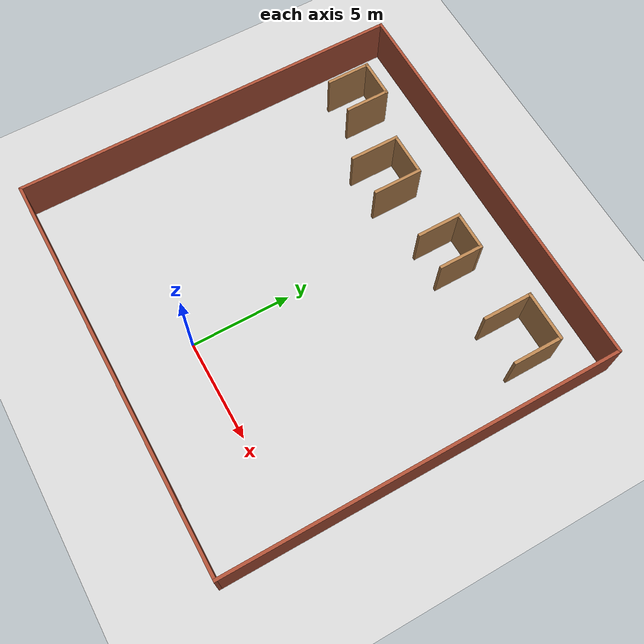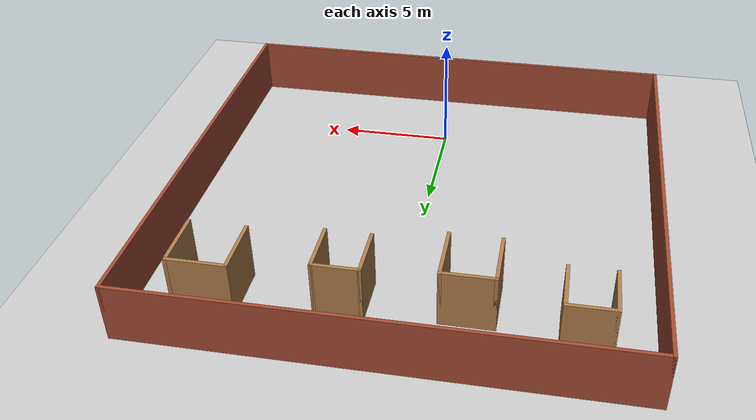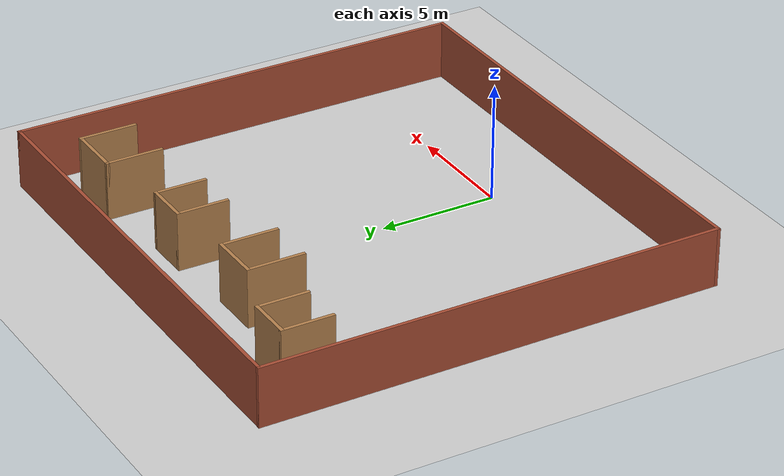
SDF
<sdf version="1.6">
 <world name="default">
  <light name="sun" type="directional">
   <pose>0 0 10 0 -0 0</pose>
   <diffuse>0.8 0.8 0.8 1</diffuse>
   <specular>0.2 0.2 0.2 1</specular>
   <attenuation>
    <range>1000</range>
    <constant>0.9</constant>
    <linear>0.01</linear>
    <quadratic>0.001</quadratic>
   </attenuation>
   <direction>-0.5 0.1 -0.9</direction>
  </light>
  <model name="ground_plane">
   <static>1</static>
   <link name="link">
    <collision name="collision">
     <geometry><plane><normal>0 0 1</normal><size>100 100</size></plane></geometry>
     <surface><friction><ode><mu>100</mu><mu2>50</mu2></ode></friction></surface>
    </collision>
    <visual name="visual">
     <cast_shadows>0</cast_shadows>
     <geometry><plane><normal>0 0 1</normal><size>100 100</size></plane></geometry>
     <material>
      <script><uri>file://media/materials/scripts/gazebo.material</uri><name>Gazebo/Grey</name></script>
     </material>
    </visual>
   </link>
  </model>
  <gravity>0 0 -9.8</gravity>
  <magnetic_field>6e-06 2.3e-05 -4.2e-05</magnetic_field>
  <atmosphere type="adiabatic"/>
  <physics name="default_physics" default="0" type="ode">
   <max_step_size>0.001</max_step_size>
   <real_time_factor>1</real_time_factor>
   <real_time_update_rate>1000</real_time_update_rate>
  </physics>
  <scene><ambient>0.4 0.4 0.4 1</ambient><background>0.7 0.7 0.7 1</background><shadows>1</shadows></scene>
  <spherical_coordinates>
   <surface_model>EARTH_WGS84</surface_model>
   <latitude_deg>0</latitude_deg>
   <longitude_deg>0</longitude_deg>
   <elevation>0</elevation>
   <heading_deg>0</heading_deg>
  </spherical_coordinates>
  <model name="goal_uncertainty_test">
   <pose>0.096532 6.03097 0 0 -0 0</pose>
   <link name="Wall_60">
    <collision name="Wall_60_Collision">
     <geometry><box><size>20.25 0.15 2.5</size></box></geometry>
     <pose>0 0 1.25 0 -0 0</pose>
    </collision>
    <visual name="Wall_60_Visual">
     <pose>0 0 1.25 0 -0 0</pose>
     <geometry><box><size>20.25 0.15 2.5</size></box></geometry>
     <material>
      <script><uri>file://media/materials/scripts/gazebo.material</uri><name>Gazebo/Bricks</name></script>
      <ambient>1 1 1 1</ambient>
     </material>
     <meta><layer>0</layer></meta>
    </visual>
    <pose>0 -9.8 0 0 -0 3.14159</pose>
   </link>
   <link name="Wall_61">
    <collision name="Wall_61_Collision">
     <geometry><box><size>19.75 0.15 2.5</size></box></geometry>
     <pose>0 0 1.25 0 -0 0</pose>
    </collision>
    <visual name="Wall_61_Visual">
     <pose>0 0 1.25 0 -0 0</pose>
     <geometry><box><size>19.75 0.15 2.5</size></box></geometry>
     <material>
      <script><uri>file://media/materials/scripts/gazebo.material</uri><name>Gazebo/Bricks</name></script>
      <ambient>1 1 1 1</ambient>
     </material>
     <meta><layer>0</layer></meta>
    </visual>
    <pose>-10.05 0 0 0 -0 1.5708</pose>
   </link>
   <link name="Wall_63">
    <collision name="Wall_63_Collision">
     <geometry><box><size>20.25 0.15 2.5</size></box></geometry>
     <pose>0 0 1.25 0 -0 0</pose>
    </collision>
    <visual name="Wall_63_Visual">
     <pose>0 0 1.25 0 -0 0</pose>
     <geometry><box><size>20.25 0.15 2.5</size></box></geometry>
     <material>
      <script><uri>file://media/materials/scripts/gazebo.material</uri><name>Gazebo/Bricks</name></script>
      <ambient>1 1 1 1</ambient>
     </material>
     <meta><layer>0</layer></meta>
    </visual>
    <pose>0 9.8 0 0 -0 0</pose>
   </link>
   <link name="Wall_65">
    <collision name="Wall_65_Collision">
     <geometry><box><size>19.75 0.15 2.5</size></box></geometry>
     <pose>0 0 1.25 0 -0 0</pose>
    </collision>
    <visual name="Wall_65_Visual">
     <pose>0 0 1.25 0 -0 0</pose>
     <geometry><box><size>19.75 0.15 2.5</size></box></geometry>
     <material>
      <script><uri>file://media/materials/scripts/gazebo.material</uri><name>Gazebo/Bricks</name></script>
      <ambient>1 1 1 1</ambient>
     </material>
     <meta><layer>0</layer></meta>
    </visual>
    <pose>10.05 0 0 0 -0 -1.5708</pose>
   </link>
   <link name="Wall_67">
    <collision name="Wall_67_Collision">
     <geometry><box><size>2.25 0.15 2.5</size></box></geometry>
     <pose>0 0 1.25 0 -0 0</pose>
    </collision>
    <visual name="Wall_67_Visual">
     <pose>0 0 1.25 0 -0 0</pose>
     <geometry><box><size>2.25 0.15 2.5</size></box></geometry>
     <material>
      <script><uri>file://media/materials/scripts/gazebo.material</uri><name>Gazebo/Wood</name></script>
      <ambient>1 1 1 1</ambient>
     </material>
     <meta><layer>0</layer></meta>
    </visual>
    <pose>-8.26554 6.86638 0 0 -0 1.5708</pose>
   </link>
   <link name="Wall_68">
    <collision name="Wall_68_Collision">
     <geometry><box><size>2 0.15 2.5</size></box></geometry>
     <pose>0 0 1.25 0 -0 0</pose>
    </collision>
    <visual name="Wall_68_Visual">
     <pose>0 0 1.25 0 -0 0</pose>
     <geometry><box><size>2 0.15 2.5</size></box></geometry>
     <material>
      <script><uri>file://media/materials/scripts/gazebo.material</uri><name>Gazebo/Wood</name></script>
      <ambient>1 1 1 1</ambient>
     </material>
     <meta><layer>0</layer></meta>
    </visual>
    <pose>-7.34054 7.91638 0 0 -0 0</pose>
   </link>
   <link name="Wall_69">
    <collision name="Wall_69_Collision">
     <geometry><box><size>2.25 0.15 2.5</size></box></geometry>
     <pose>0 0 1.25 0 -0 0</pose>
    </collision>
    <visual name="Wall_69_Visual">
     <pose>0 0 1.25 0 -0 0</pose>
     <geometry><box><size>2.25 0.15 2.5</size></box></geometry>
     <material>
      <script><uri>file://media/materials/scripts/gazebo.material</uri><name>Gazebo/Wood</name></script>
      <ambient>1 1 1 1</ambient>
     </material>
     <meta><layer>0</layer></meta>
    </visual>
    <pose>-6.41554 6.86638 0 0 -0 -1.5708</pose>
   </link>
   <link name="Wall_71">
    <collision name="Wall_71_Collision">
     <geometry><box><size>2.5 0.15 2.5</size></box></geometry>
     <pose>0 0 1.25 0 -0 0</pose>
    </collision>
    <visual name="Wall_71_Visual">
     <pose>0 0 1.25 0 -0 0</pose>
     <geometry><box><size>2.5 0.15 2.5</size></box></geometry>
     <material>
      <script><uri>file://media/materials/scripts/gazebo.material</uri><name>Gazebo/Wood</name></script>
      <ambient>1 1 1 1</ambient>
     </material>
     <meta><layer>0</layer></meta>
    </visual>
    <pose>-3.928 5.80205 0 0 -0 1.5708</pose>
   </link>
   <link name="Wall_72">
    <collision name="Wall_72_Collision">
     <geometry><box><size>2.25 0.15 2.5</size></box></geometry>
     <pose>0 0 1.25 0 -0 0</pose>
    </collision>
    <visual name="Wall_72_Visual">
     <pose>0 0 1.25 0 -0 0</pose>
     <geometry><box><size>2.25 0.15 2.5</size></box></geometry>
     <material>
      <script><uri>file://media/materials/scripts/gazebo.material</uri><name>Gazebo/Wood</name></script>
      <ambient>1 1 1 1</ambient>
     </material>
     <meta><layer>0</layer></meta>
    </visual>
    <pose>-2.878 6.97705 0 0 -0 0</pose>
   </link>
   <link name="Wall_73">
    <collision name="Wall_73_Collision">
     <geometry><box><size>2.5 0.15 2.5</size></box></geometry>
     <pose>0 0 1.25 0 -0 0</pose>
    </collision>
    <visual name="Wall_73_Visual">
     <pose>0 0 1.25 0 -0 0</pose>
     <geometry><box><size>2.5 0.15 2.5</size></box></geometry>
     <material>
      <script><uri>file://media/materials/scripts/gazebo.material</uri><name>Gazebo/Wood</name></script>
      <ambient>1 1 1 1</ambient>
     </material>
     <meta><layer>0</layer></meta>
    </visual>
    <pose>-1.828 5.80205 0 0 -0 -1.5708</pose>
   </link>
   <link name="Wall_75">
    <collision name="Wall_75_Collision">
     <geometry><box><size>2.25 0.15 2.5</size></box></geometry>
     <pose>0 0 1.25 0 -0 0</pose>
    </collision>
    <visual name="Wall_75_Visual">
     <pose>0 0 1.25 0 -0 0</pose>
     <geometry><box><size>2.25 0.15 2.5</size></box></geometry>
     <material>
      <script><uri>file://media/materials/scripts/gazebo.material</uri><name>Gazebo/Wood</name></script>
      <ambient>1 1 1 1</ambient>
     </material>
     <meta><layer>0</layer></meta>
    </visual>
    <pose>1.07415 6.27172 0 0 -0 1.5708</pose>
   </link>
   <link name="Wall_76">
    <collision name="Wall_76_Collision">
     <geometry><box><size>2 0.15 2.5</size></box></geometry>
     <pose>0 0 1.25 0 -0 0</pose>
    </collision>
    <visual name="Wall_76_Visual">
     <pose>0 0 1.25 0 -0 0</pose>
     <geometry><box><size>2 0.15 2.5</size></box></geometry>
     <material>
      <script><uri>file://media/materials/scripts/gazebo.material</uri><name>Gazebo/Wood</name></script>
      <ambient>1 1 1 1</ambient>
     </material>
     <meta><layer>0</layer></meta>
    </visual>
    <pose>1.99916 7.32172 0 0 -0 0</pose>
   </link>
   <link name="Wall_77">
    <collision name="Wall_77_Collision">
     <geometry><box><size>2.25 0.15 2.5</size></box></geometry>
     <pose>0 0 1.25 0 -0 0</pose>
    </collision>
    <visual name="Wall_77_Visual">
     <pose>0 0 1.25 0 -0 0</pose>
     <geometry><box><size>2.25 0.15 2.5</size></box></geometry>
     <material>
      <script><uri>file://media/materials/scripts/gazebo.material</uri><name>Gazebo/Wood</name></script>
      <ambient>1 1 1 1</ambient>
     </material>
     <meta><layer>0</layer></meta>
    </visual>
    <pose>2.92415 6.27172 0 0 -0 -1.5708</pose>
   </link>
   <link name="Wall_79">
    <collision name="Wall_79_Collision">
     <geometry><box><size>2.5 0.15 2.5</size></box></geometry>
     <pose>0 0 1.25 0 -0 0</pose>
    </collision>
    <visual name="Wall_79_Visual">
     <pose>0 0 1.25 0 -0 0</pose>
     <geometry><box><size>2.5 0.15 2.5</size></box></geometry>
     <material>
      <script><uri>file://media/materials/scripts/gazebo.material</uri><name>Gazebo/Wood</name></script>
      <ambient>1 1 1 1</ambient>
     </material>
     <meta><layer>0</layer></meta>
    </visual>
    <pose>5.97137 6.74652 0 0 -0 1.5708</pose>
   </link>
   <link name="Wall_80">
    <collision name="Wall_80_Collision">
     <geometry><box><size>2.5 0.15 2.5</size></box></geometry>
     <pose>0 0 1.25 0 -0 0</pose>
    </collision>
    <visual name="Wall_80_Visual">
     <pose>0 0 1.25 0 -0 0</pose>
     <geometry><box><size>2.5 0.15 2.5</size></box></geometry>
     <material>
      <script><uri>file://media/materials/scripts/gazebo.material</uri><name>Gazebo/Wood</name></script>
      <ambient>1 1 1 1</ambient>
     </material>
     <meta><layer>0</layer></meta>
    </visual>
    <pose>7.14637 7.92152 0 0 -0 0</pose>
   </link>
   <link name="Wall_81">
    <collision name="Wall_81_Collision">
     <geometry><box><size>2.5 0.15 2.5</size></box></geometry>
     <pose>0 0 1.25 0 -0 0</pose>
    </collision>
    <visual name="Wall_81_Visual">
     <pose>0 0 1.25 0 -0 0</pose>
     <geometry><box><size>2.5 0.15 2.5</size></box></geometry>
     <material>
      <script><uri>file://media/materials/scripts/gazebo.material</uri><name>Gazebo/Wood</name></script>
      <ambient>1 1 1 1</ambient>
     </material>
     <meta><layer>0</layer></meta>
    </visual>
    <pose>8.32137 6.74652 0 0 -0 -1.5708</pose>
   </link>
   <static>1</static>
  </model>
 </world>
</sdf>
